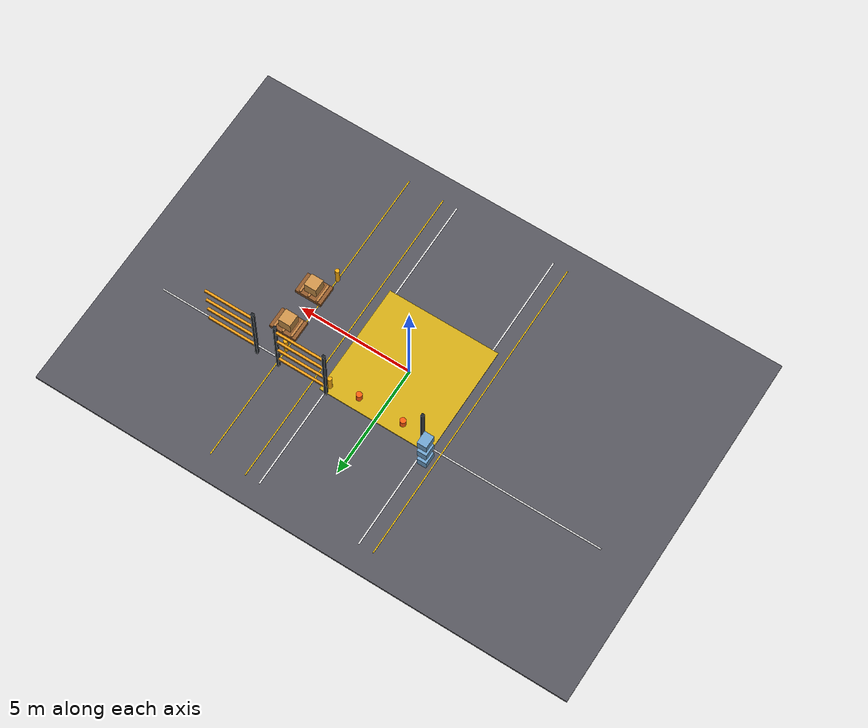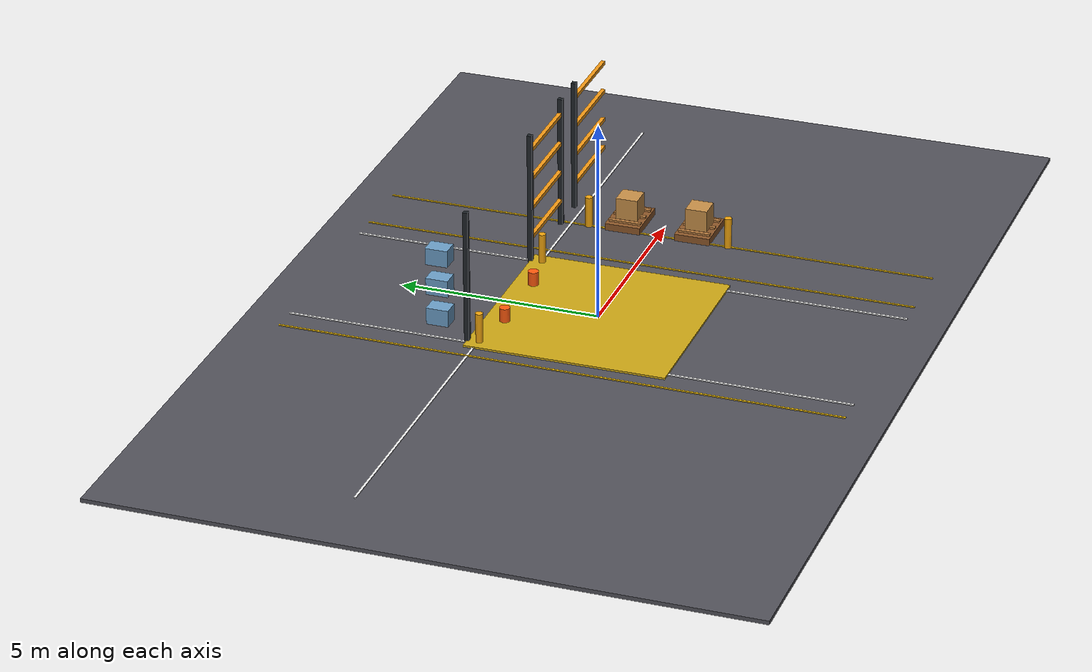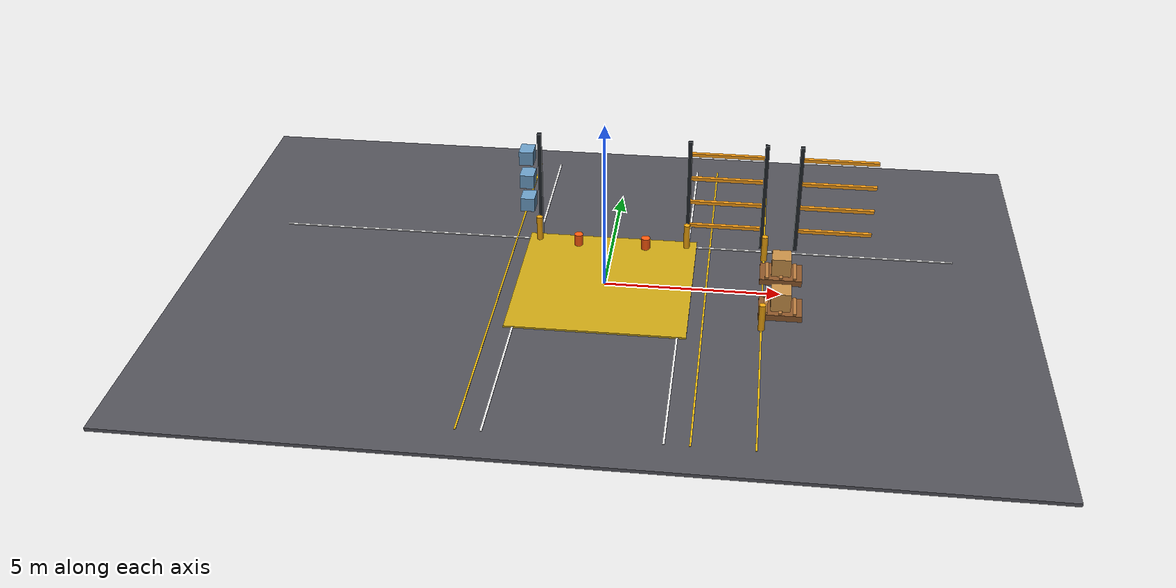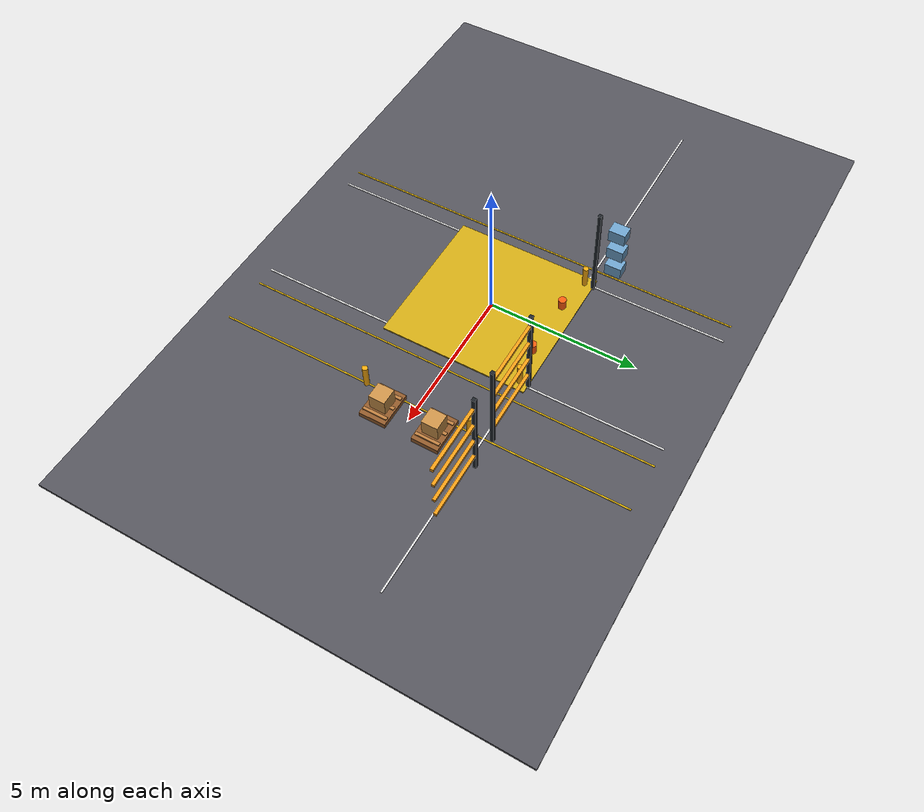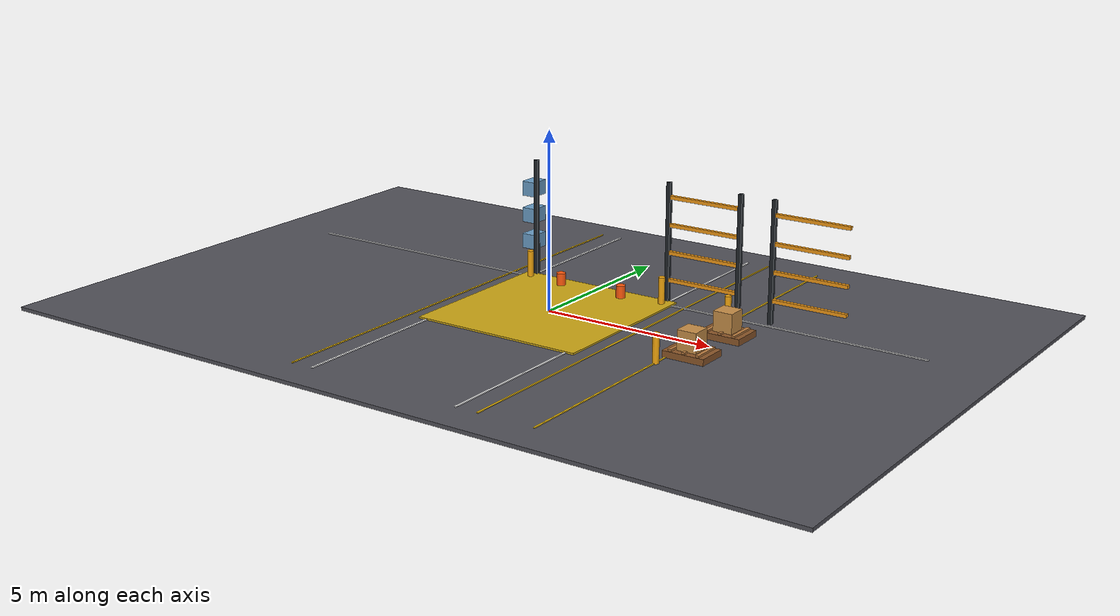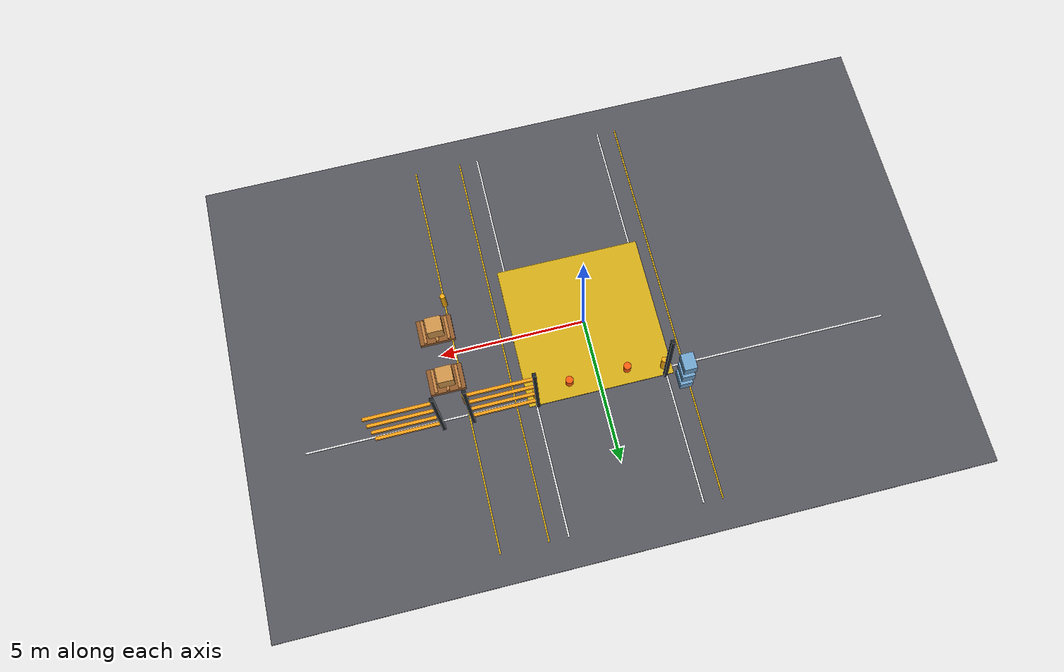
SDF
<sdf version="1.9">
 <world name="synaids_advanced_warehouse">
  <model name="warehouse_floor">
   <static>true</static>
   <pose>0 0 -0.05 0 0 0</pose>
   <link name="link">
    <collision name="collision"><geometry><box><size>24 16 0.1</size></box></geometry></collision>
    <visual name="visual">
     <geometry><box><size>24 16 0.1</size></box></geometry>
     <material>
      <ambient>0.20 0.20 0.22 1</ambient>
      <diffuse>0.32 0.32 0.35 1</diffuse>
      <specular>0.15 0.15 0.15 1</specular>
     </material>
    </visual>
   </link>
  </model>
  <model name="central_intersection">
   <static>true</static>
   <pose>0 0 0.025 0 0 0</pose>
   <link name="link">
    <visual name="visual">
     <geometry><box><size>5 5 0.05</size></box></geometry>
     <material><ambient>0.45 0.38 0.03 1</ambient><diffuse>0.80 0.65 0.08 1</diffuse></material>
    </visual>
   </link>
  </model>
  <model name="intersection_surface">
   <static>true</static>
   <pose>0 0 0.018 0 0 0</pose>
   <link name="link">
    <visual name="visual">
     <geometry><box><size>4.0 4.0 0.025</size></box></geometry>
     <material>
      <ambient>0.92 0.72 0.05 1</ambient>
      <diffuse>0.92 0.72 0.05 1</diffuse>
      <specular>0.15 0.15 0.15 1</specular>
     </material>
    </visual>
   </link>
  </model>
  <model name="intersection_line_1">
   <static>true</static>
   <pose>0 -1.75 0.012 0 0 0</pose>
   <link name="link">
    <visual name="visual">
     <geometry><box><size>3.6 0.08 0.025</size></box></geometry>
     <material>
      <ambient>0.95 0.85 0.05 1</ambient>
      <diffuse>0.95 0.85 0.05 1</diffuse>
      <specular>0.15 0.15 0.15 1</specular>
     </material>
    </visual>
   </link>
  </model>
  <model name="intersection_line_2">
   <static>true</static>
   <pose>0 1.75 0.012 0 0 0</pose>
   <link name="link">
    <visual name="visual">
     <geometry><box><size>3.6 0.08 0.025</size></box></geometry>
     <material>
      <ambient>0.95 0.85 0.05 1</ambient>
      <diffuse>0.95 0.85 0.05 1</diffuse>
      <specular>0.15 0.15 0.15 1</specular>
     </material>
    </visual>
   </link>
  </model>
  <model name="intersection_line_3">
   <static>true</static>
   <pose>-1.75 0 0.012 0 0 0</pose>
   <link name="link">
    <visual name="visual">
     <geometry><box><size>0.08 3.6 0.025</size></box></geometry>
     <material>
      <ambient>0.95 0.85 0.05 1</ambient>
      <diffuse>0.95 0.85 0.05 1</diffuse>
      <specular>0.15 0.15 0.15 1</specular>
     </material>
    </visual>
   </link>
  </model>
  <model name="intersection_line_4">
   <static>true</static>
   <pose>1.75 0 0.012 0 0 0</pose>
   <link name="link">
    <visual name="visual">
     <geometry><box><size>0.08 3.6 0.025</size></box></geometry>
     <material>
      <ambient>0.95 0.85 0.05 1</ambient>
      <diffuse>0.95 0.85 0.05 1</diffuse>
      <specular>0.15 0.15 0.15 1</specular>
     </material>
    </visual>
   </link>
  </model>
  <model name="storage_rack_2_post_2">
   <static>true</static>
   <pose>-2.1999999999999997 2.5 1.7 0 0 0</pose>
   <link name="link">
    <visual name="visual">
     <geometry><box><size>0.12 0.12 3.4</size></box></geometry>
     <material>
      <ambient>0.12 0.14 0.16 1</ambient>
      <diffuse>0.12 0.14 0.16 1</diffuse>
      <specular>0.15 0.15 0.15 1</specular>
     </material>
    </visual>
    <collision name="collision"><geometry><box><size>0.12 0.12 3.4</size></box></geometry></collision>
   </link>
  </model>
  <model name="storage_rack_2_package_0_2">
   <static>true</static>
   <pose>-2.6499999999999995 3.0 0.87 0 0 0</pose>
   <link name="link">
    <visual name="visual">
     <geometry><box><size>0.42 0.55 0.42</size></box></geometry>
     <material>
      <ambient>0.42 0.62 0.78 1</ambient>
      <diffuse>0.42 0.62 0.78 1</diffuse>
      <specular>0.15 0.15 0.15 1</specular>
     </material>
    </visual>
    <collision name="collision"><geometry><box><size>0.42 0.55 0.42</size></box></geometry></collision>
   </link>
  </model>
  <model name="storage_rack_2_package_1_2">
   <static>true</static>
   <pose>-2.6499999999999995 3.0 1.6500000000000001 0 0 0</pose>
   <link name="link">
    <visual name="visual">
     <geometry><box><size>0.42 0.55 0.42</size></box></geometry>
     <material>
      <ambient>0.42 0.62 0.78 1</ambient>
      <diffuse>0.42 0.62 0.78 1</diffuse>
      <specular>0.15 0.15 0.15 1</specular>
     </material>
    </visual>
    <collision name="collision"><geometry><box><size>0.42 0.55 0.42</size></box></geometry></collision>
   </link>
  </model>
  <model name="storage_rack_2_package_2_2">
   <static>true</static>
   <pose>-2.6499999999999995 3.0 2.43 0 0 0</pose>
   <link name="link">
    <visual name="visual">
     <geometry><box><size>0.42 0.55 0.42</size></box></geometry>
     <material>
      <ambient>0.42 0.62 0.78 1</ambient>
      <diffuse>0.42 0.62 0.78 1</diffuse>
      <specular>0.15 0.15 0.15 1</specular>
     </material>
    </visual>
    <collision name="collision"><geometry><box><size>0.42 0.55 0.42</size></box></geometry></collision>
   </link>
  </model>
  <model name="storage_rack_3_post_0">
   <static>true</static>
   <pose>2.1999999999999997 2.5 1.7 0 0 0</pose>
   <link name="link">
    <visual name="visual">
     <geometry><box><size>0.12 0.12 3.4</size></box></geometry>
     <material>
      <ambient>0.12 0.14 0.16 1</ambient>
      <diffuse>0.12 0.14 0.16 1</diffuse>
      <specular>0.15 0.15 0.15 1</specular>
     </material>
    </visual>
    <collision name="collision"><geometry><box><size>0.12 0.12 3.4</size></box></geometry></collision>
   </link>
  </model>
  <model name="storage_rack_3_post_2">
   <static>true</static>
   <pose>4.4 2.5 1.7 0 0 0</pose>
   <link name="link">
    <visual name="visual">
     <geometry><box><size>0.12 0.12 3.4</size></box></geometry>
     <material>
      <ambient>0.12 0.14 0.16 1</ambient>
      <diffuse>0.12 0.14 0.16 1</diffuse>
      <specular>0.15 0.15 0.15 1</specular>
     </material>
    </visual>
    <collision name="collision"><geometry><box><size>0.12 0.12 3.4</size></box></geometry></collision>
   </link>
  </model>
  <model name="storage_rack_3_beam_front_0">
   <static>true</static>
   <pose>3.3 2.5 0.65 0 0 0</pose>
   <link name="link">
    <visual name="visual">
     <geometry><box><size>2.2 0.1 0.1</size></box></geometry>
     <material>
      <ambient>0.95 0.60 0.08 1</ambient>
      <diffuse>0.95 0.60 0.08 1</diffuse>
      <specular>0.15 0.15 0.15 1</specular>
     </material>
    </visual>
    <collision name="collision"><geometry><box><size>2.2 0.1 0.1</size></box></geometry></collision>
   </link>
  </model>
  <model name="storage_rack_3_beam_front_1">
   <static>true</static>
   <pose>3.3 2.5 1.4300000000000002 0 0 0</pose>
   <link name="link">
    <visual name="visual">
     <geometry><box><size>2.2 0.1 0.1</size></box></geometry>
     <material>
      <ambient>0.95 0.60 0.08 1</ambient>
      <diffuse>0.95 0.60 0.08 1</diffuse>
      <specular>0.15 0.15 0.15 1</specular>
     </material>
    </visual>
    <collision name="collision"><geometry><box><size>2.2 0.1 0.1</size></box></geometry></collision>
   </link>
  </model>
  <model name="storage_rack_3_beam_front_2">
   <static>true</static>
   <pose>3.3 2.5 2.21 0 0 0</pose>
   <link name="link">
    <visual name="visual">
     <geometry><box><size>2.2 0.1 0.1</size></box></geometry>
     <material>
      <ambient>0.95 0.60 0.08 1</ambient>
      <diffuse>0.95 0.60 0.08 1</diffuse>
      <specular>0.15 0.15 0.15 1</specular>
     </material>
    </visual>
    <collision name="collision"><geometry><box><size>2.2 0.1 0.1</size></box></geometry></collision>
   </link>
  </model>
  <model name="storage_rack_3_beam_front_3">
   <static>true</static>
   <pose>3.3 2.5 2.9899999999999998 0 0 0</pose>
   <link name="link">
    <visual name="visual">
     <geometry><box><size>2.2 0.1 0.1</size></box></geometry>
     <material>
      <ambient>0.95 0.60 0.08 1</ambient>
      <diffuse>0.95 0.60 0.08 1</diffuse>
      <specular>0.15 0.15 0.15 1</specular>
     </material>
    </visual>
    <collision name="collision"><geometry><box><size>2.2 0.1 0.1</size></box></geometry></collision>
   </link>
  </model>
  <model name="storage_rack_4_post_0">
   <static>true</static>
   <pose>5.4 2.5 1.7 0 0 0</pose>
   <link name="link">
    <visual name="visual">
     <geometry><box><size>0.12 0.12 3.4</size></box></geometry>
     <material>
      <ambient>0.12 0.14 0.16 1</ambient>
      <diffuse>0.12 0.14 0.16 1</diffuse>
      <specular>0.15 0.15 0.15 1</specular>
     </material>
    </visual>
    <collision name="collision"><geometry><box><size>0.12 0.12 3.4</size></box></geometry></collision>
   </link>
  </model>
  <model name="storage_rack_4_beam_front_0">
   <static>true</static>
   <pose>6.5 2.5 0.65 0 0 0</pose>
   <link name="link">
    <visual name="visual">
     <geometry><box><size>2.2 0.1 0.1</size></box></geometry>
     <material>
      <ambient>0.95 0.60 0.08 1</ambient>
      <diffuse>0.95 0.60 0.08 1</diffuse>
      <specular>0.15 0.15 0.15 1</specular>
     </material>
    </visual>
    <collision name="collision"><geometry><box><size>2.2 0.1 0.1</size></box></geometry></collision>
   </link>
  </model>
  <model name="storage_rack_4_beam_front_1">
   <static>true</static>
   <pose>6.5 2.5 1.4300000000000002 0 0 0</pose>
   <link name="link">
    <visual name="visual">
     <geometry><box><size>2.2 0.1 0.1</size></box></geometry>
     <material>
      <ambient>0.95 0.60 0.08 1</ambient>
      <diffuse>0.95 0.60 0.08 1</diffuse>
      <specular>0.15 0.15 0.15 1</specular>
     </material>
    </visual>
    <collision name="collision"><geometry><box><size>2.2 0.1 0.1</size></box></geometry></collision>
   </link>
  </model>
  <model name="storage_rack_4_beam_front_2">
   <static>true</static>
   <pose>6.5 2.5 2.21 0 0 0</pose>
   <link name="link">
    <visual name="visual">
     <geometry><box><size>2.2 0.1 0.1</size></box></geometry>
     <material>
      <ambient>0.95 0.60 0.08 1</ambient>
      <diffuse>0.95 0.60 0.08 1</diffuse>
      <specular>0.15 0.15 0.15 1</specular>
     </material>
    </visual>
    <collision name="collision"><geometry><box><size>2.2 0.1 0.1</size></box></geometry></collision>
   </link>
  </model>
  <model name="storage_rack_4_beam_front_3">
   <static>true</static>
   <pose>6.5 2.5 2.9899999999999998 0 0 0</pose>
   <link name="link">
    <visual name="visual">
     <geometry><box><size>2.2 0.1 0.1</size></box></geometry>
     <material>
      <ambient>0.95 0.60 0.08 1</ambient>
      <diffuse>0.95 0.60 0.08 1</diffuse>
      <specular>0.15 0.15 0.15 1</specular>
     </material>
    </visual>
    <collision name="collision"><geometry><box><size>2.2 0.1 0.1</size></box></geometry></collision>
   </link>
  </model>
  <model name="safety_bollard_0">
   <static>true</static>
   <pose>-2.2 2.2 0.4 0 0 0</pose>
   <link name="link">
    <visual name="visual">
     <geometry><cylinder><radius>0.09</radius><length>0.8</length></cylinder></geometry>
     <material>
      <ambient>0.95 0.65 0.05 1</ambient>
      <diffuse>0.95 0.65 0.05 1</diffuse>
      <specular>0.15 0.15 0.15 1</specular>
     </material>
    </visual>
    <collision name="collision">
     <geometry><cylinder><radius>0.09</radius><length>0.8</length></cylinder></geometry>
    </collision>
   </link>
  </model>
  <model name="safety_bollard_1">
   <static>true</static>
   <pose>2.2 2.2 0.4 0 0 0</pose>
   <link name="link">
    <visual name="visual">
     <geometry><cylinder><radius>0.09</radius><length>0.8</length></cylinder></geometry>
     <material>
      <ambient>0.95 0.65 0.05 1</ambient>
      <diffuse>0.95 0.65 0.05 1</diffuse>
      <specular>0.15 0.15 0.15 1</specular>
     </material>
    </visual>
    <collision name="collision">
     <geometry><cylinder><radius>0.09</radius><length>0.8</length></cylinder></geometry>
    </collision>
   </link>
  </model>
  <model name="safety_bollard_5">
   <static>true</static>
   <pose>4.5 1.8 0.4 0 0 0</pose>
   <link name="link">
    <visual name="visual">
     <geometry><cylinder><radius>0.09</radius><length>0.8</length></cylinder></geometry>
     <material>
      <ambient>0.95 0.65 0.05 1</ambient>
      <diffuse>0.95 0.65 0.05 1</diffuse>
      <specular>0.15 0.15 0.15 1</specular>
     </material>
    </visual>
    <collision name="collision">
     <geometry><cylinder><radius>0.09</radius><length>0.8</length></cylinder></geometry>
    </collision>
   </link>
  </model>
  <model name="safety_bollard_7">
   <static>true</static>
   <pose>4.5 -1.8 0.4 0 0 0</pose>
   <link name="link">
    <visual name="visual">
     <geometry><cylinder><radius>0.09</radius><length>0.8</length></cylinder></geometry>
     <material>
      <ambient>0.95 0.65 0.05 1</ambient>
      <diffuse>0.95 0.65 0.05 1</diffuse>
      <specular>0.15 0.15 0.15 1</specular>
     </material>
    </visual>
    <collision name="collision">
     <geometry><cylinder><radius>0.09</radius><length>0.8</length></cylinder></geometry>
    </collision>
   </link>
  </model>
  <model name="loose_pallet_3_base">
   <static>true</static>
   <pose>5.0 0.9 0.1 0 0 0</pose>
   <link name="link">
    <visual name="visual">
     <geometry><box><size>1.2 0.9 0.18</size></box></geometry>
     <material>
      <ambient>0.55 0.34 0.16 1</ambient>
      <diffuse>0.55 0.34 0.16 1</diffuse>
      <specular>0.15 0.15 0.15 1</specular>
     </material>
    </visual>
    <collision name="collision"><geometry><box><size>1.2 0.9 0.18</size></box></geometry></collision>
   </link>
  </model>
  <model name="loose_pallet_3_slat_0">
   <static>true</static>
   <pose>4.6 0.9 0.21000000000000002 0 0 0</pose>
   <link name="link">
    <visual name="visual">
     <geometry><box><size>0.1 0.82 0.06</size></box></geometry>
     <material>
      <ambient>0.72 0.48 0.24 1</ambient>
      <diffuse>0.72 0.48 0.24 1</diffuse>
      <specular>0.15 0.15 0.15 1</specular>
     </material>
    </visual>
    <collision name="collision"><geometry><box><size>0.1 0.82 0.06</size></box></geometry></collision>
   </link>
  </model>
  <model name="loose_pallet_3_slat_1">
   <static>true</static>
   <pose>5.0 0.9 0.21000000000000002 0 0 0</pose>
   <link name="link">
    <visual name="visual">
     <geometry><box><size>0.1 0.82 0.06</size></box></geometry>
     <material>
      <ambient>0.72 0.48 0.24 1</ambient>
      <diffuse>0.72 0.48 0.24 1</diffuse>
      <specular>0.15 0.15 0.15 1</specular>
     </material>
    </visual>
    <collision name="collision"><geometry><box><size>0.1 0.82 0.06</size></box></geometry></collision>
   </link>
  </model>
  <model name="loose_pallet_3_slat_2">
   <static>true</static>
   <pose>5.3999999999999995 0.9 0.21000000000000002 0 0 0</pose>
   <link name="link">
    <visual name="visual">
     <geometry><box><size>0.1 0.82 0.06</size></box></geometry>
     <material>
      <ambient>0.72 0.48 0.24 1</ambient>
      <diffuse>0.72 0.48 0.24 1</diffuse>
      <specular>0.15 0.15 0.15 1</specular>
     </material>
    </visual>
    <collision name="collision"><geometry><box><size>0.1 0.82 0.06</size></box></geometry></collision>
   </link>
  </model>
  <model name="loose_package_3">
   <static>true</static>
   <pose>5.0 0.9 0.48 0 0 0</pose>
   <link name="link">
    <visual name="visual">
     <geometry><box><size>0.55 0.55 0.55</size></box></geometry>
     <material>
      <ambient>0.78 0.56 0.28 1</ambient>
      <diffuse>0.78 0.56 0.28 1</diffuse>
      <specular>0.15 0.15 0.15 1</specular>
     </material>
    </visual>
    <collision name="collision"><geometry><box><size>0.55 0.55 0.55</size></box></geometry></collision>
   </link>
  </model>
  <model name="loose_pallet_5_base">
   <static>true</static>
   <pose>5.0 -0.9 0.1 0 0 0</pose>
   <link name="link">
    <visual name="visual">
     <geometry><box><size>1.2 0.9 0.18</size></box></geometry>
     <material>
      <ambient>0.55 0.34 0.16 1</ambient>
      <diffuse>0.55 0.34 0.16 1</diffuse>
      <specular>0.15 0.15 0.15 1</specular>
     </material>
    </visual>
    <collision name="collision"><geometry><box><size>1.2 0.9 0.18</size></box></geometry></collision>
   </link>
  </model>
  <model name="loose_pallet_5_slat_0">
   <static>true</static>
   <pose>4.6 -0.9 0.21000000000000002 0 0 0</pose>
   <link name="link">
    <visual name="visual">
     <geometry><box><size>0.1 0.82 0.06</size></box></geometry>
     <material>
      <ambient>0.72 0.48 0.24 1</ambient>
      <diffuse>0.72 0.48 0.24 1</diffuse>
      <specular>0.15 0.15 0.15 1</specular>
     </material>
    </visual>
    <collision name="collision"><geometry><box><size>0.1 0.82 0.06</size></box></geometry></collision>
   </link>
  </model>
  <model name="loose_pallet_5_slat_1">
   <static>true</static>
   <pose>5.0 -0.9 0.21000000000000002 0 0 0</pose>
   <link name="link">
    <visual name="visual">
     <geometry><box><size>0.1 0.82 0.06</size></box></geometry>
     <material>
      <ambient>0.72 0.48 0.24 1</ambient>
      <diffuse>0.72 0.48 0.24 1</diffuse>
      <specular>0.15 0.15 0.15 1</specular>
     </material>
    </visual>
    <collision name="collision"><geometry><box><size>0.1 0.82 0.06</size></box></geometry></collision>
   </link>
  </model>
  <model name="loose_pallet_5_slat_2">
   <static>true</static>
   <pose>5.3999999999999995 -0.9 0.21000000000000002 0 0 0</pose>
   <link name="link">
    <visual name="visual">
     <geometry><box><size>0.1 0.82 0.06</size></box></geometry>
     <material>
      <ambient>0.72 0.48 0.24 1</ambient>
      <diffuse>0.72 0.48 0.24 1</diffuse>
      <specular>0.15 0.15 0.15 1</specular>
     </material>
    </visual>
    <collision name="collision"><geometry><box><size>0.1 0.82 0.06</size></box></geometry></collision>
   </link>
  </model>
  <model name="loose_package_5">
   <static>true</static>
   <pose>5.0 -0.9 0.48 0 0 0</pose>
   <link name="link">
    <visual name="visual">
     <geometry><box><size>0.55 0.55 0.55</size></box></geometry>
     <material>
      <ambient>0.78 0.56 0.28 1</ambient>
      <diffuse>0.78 0.56 0.28 1</diffuse>
      <specular>0.15 0.15 0.15 1</specular>
     </material>
    </visual>
    <collision name="collision"><geometry><box><size>0.55 0.55 0.55</size></box></geometry></collision>
   </link>
  </model>
  <model name="road_horizontal_top">
   <static>true</static>
   <pose>0 2.25 0.012 0 0 0</pose>
   <link name="link">
    <visual name="visual">
     <geometry><box><size>20 0.055 0.025</size></box></geometry>
     <material>
      <ambient>0.95 0.95 0.95 1</ambient>
      <diffuse>0.95 0.95 0.95 1</diffuse>
      <specular>0.15 0.15 0.15 1</specular>
     </material>
    </visual>
   </link>
  </model>
  <model name="road_vertical_left">
   <static>true</static>
   <pose>-2.25 0 0.012 0 0 0</pose>
   <link name="link">
    <visual name="visual">
     <geometry><box><size>0.055 14 0.025</size></box></geometry>
     <material>
      <ambient>0.95 0.95 0.95 1</ambient>
      <diffuse>0.95 0.95 0.95 1</diffuse>
      <specular>0.15 0.15 0.15 1</specular>
     </material>
    </visual>
   </link>
  </model>
  <model name="road_vertical_right">
   <static>true</static>
   <pose>2.25 0 0.012 0 0 0</pose>
   <link name="link">
    <visual name="visual">
     <geometry><box><size>0.055 14 0.025</size></box></geometry>
     <material>
      <ambient>0.95 0.95 0.95 1</ambient>
      <diffuse>0.95 0.95 0.95 1</diffuse>
      <specular>0.15 0.15 0.15 1</specular>
     </material>
    </visual>
   </link>
  </model>
  <model name="aisle_boundary_-2.9">
   <static>true</static>
   <pose>-2.9 0 0.012 0 0 0</pose>
   <link name="link">
    <visual name="visual">
     <geometry><box><size>0.045 14 0.025</size></box></geometry>
     <material>
      <ambient>0.95 0.75 0.05 1</ambient>
      <diffuse>0.95 0.75 0.05 1</diffuse>
      <specular>0.15 0.15 0.15 1</specular>
     </material>
    </visual>
   </link>
  </model>
  <model name="aisle_boundary_2.9">
   <static>true</static>
   <pose>2.9 0 0.012 0 0 0</pose>
   <link name="link">
    <visual name="visual">
     <geometry><box><size>0.045 14 0.025</size></box></geometry>
     <material>
      <ambient>0.95 0.75 0.05 1</ambient>
      <diffuse>0.95 0.75 0.05 1</diffuse>
      <specular>0.15 0.15 0.15 1</specular>
     </material>
    </visual>
   </link>
  </model>
  <model name="aisle_boundary_4.5">
   <static>true</static>
   <pose>4.5 0 0.012 0 0 0</pose>
   <link name="link">
    <visual name="visual">
     <geometry><box><size>0.045 14 0.025</size></box></geometry>
     <material>
      <ambient>0.95 0.75 0.05 1</ambient>
      <diffuse>0.95 0.75 0.05 1</diffuse>
      <specular>0.15 0.15 0.15 1</specular>
     </material>
    </visual>
   </link>
  </model>
  <model name="traffic_cone_4">
   <static>true</static>
   <pose>-1.0 2.0 0.2 0 0 0</pose>
   <link name="link">
    <visual name="visual">
     <geometry><cylinder><radius>0.13</radius><length>0.4</length></cylinder></geometry>
     <material>
      <ambient>1.0 0.35 0.05 1</ambient>
      <diffuse>1.0 0.35 0.05 1</diffuse>
      <specular>0.15 0.15 0.15 1</specular>
     </material>
    </visual>
    <collision name="collision">
     <geometry><cylinder><radius>0.13</radius><length>0.4</length></cylinder></geometry>
    </collision>
   </link>
  </model>
  <model name="traffic_cone_5">
   <static>true</static>
   <pose>1.0 2.0 0.2 0 0 0</pose>
   <link name="link">
    <visual name="visual">
     <geometry><cylinder><radius>0.13</radius><length>0.4</length></cylinder></geometry>
     <material>
      <ambient>1.0 0.35 0.05 1</ambient>
      <diffuse>1.0 0.35 0.05 1</diffuse>
      <specular>0.15 0.15 0.15 1</specular>
     </material>
    </visual>
    <collision name="collision">
     <geometry><cylinder><radius>0.13</radius><length>0.4</length></cylinder></geometry>
    </collision>
   </link>
  </model>
 </world>
</sdf>
